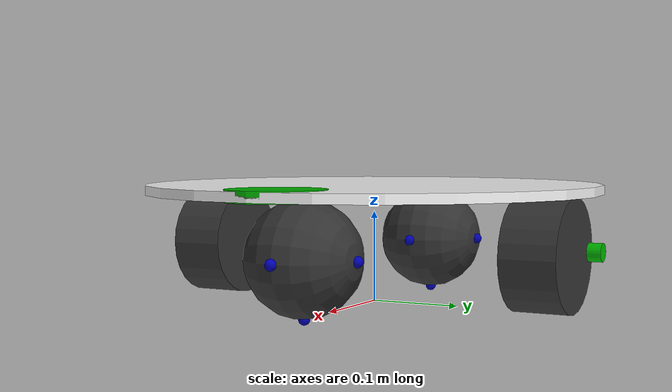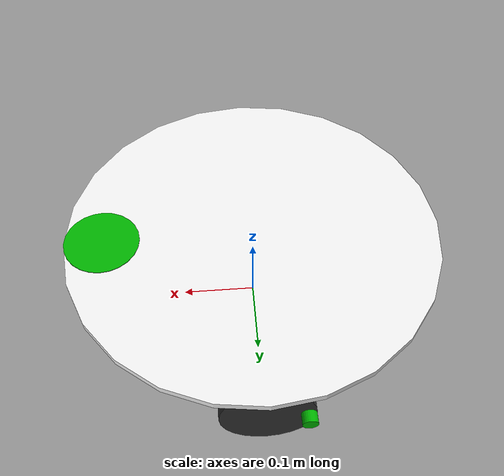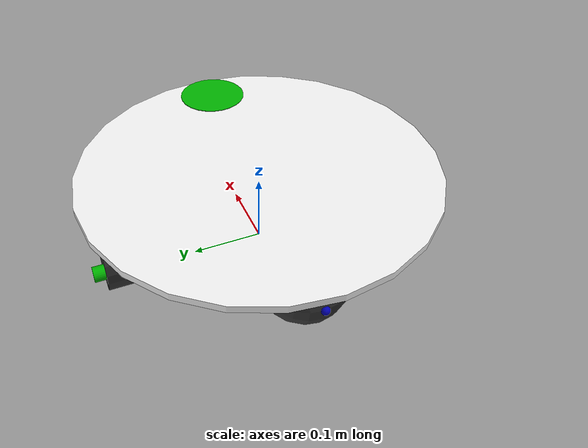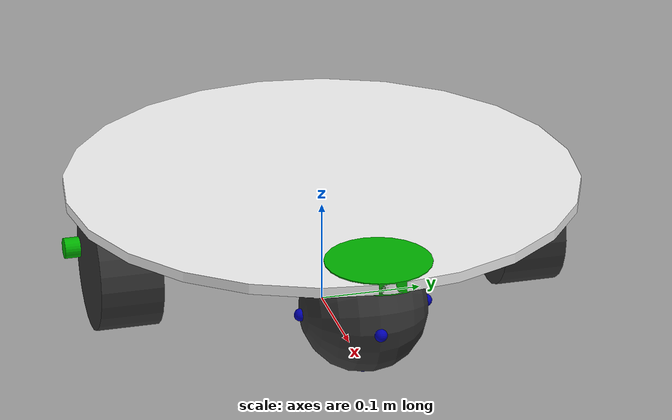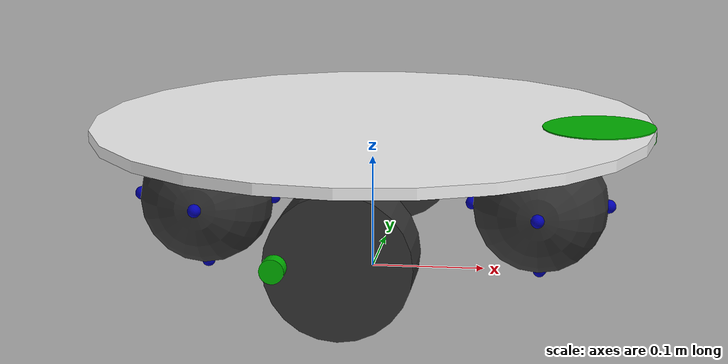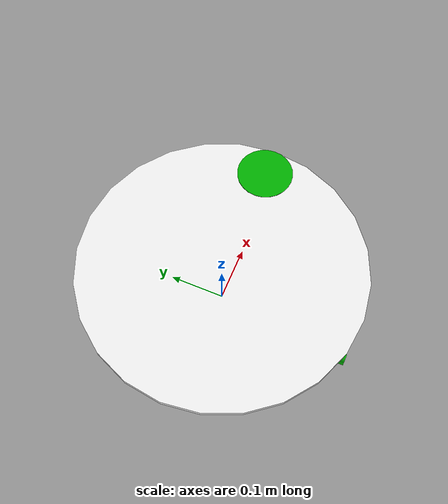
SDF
<!--Prefer Using this version.-->

<!--scale -->
<!--chassis length -->
<!--chassis radius -->
<!--wheel radius -->
<!--wheel length -->
<!--friction coefficient on wheels range from 0 to 1 -->
<!--slip coefficient range from 0 to 1 -->
<!--chassis mass-->
<!--mass of revolute wheels-->
<!--mass of caster wheels-->

<?xml version='1.0'?>
<sdf version='1.6'>
  <model name='m_4wrobot'>
	  <static>false</static>
	  <pose>0 0 0 0 0 0</pose>
	  <link name = 'chassis'>
		  <pose>0 0 0.126 0 0 0</pose>
		  <inertial>
			<mass>1</mass>
			<inertia>
				<ixx>0.015633333333333332</ixx>
				<ixy>0</ixy>
				<ixz>0</ixz>
				<iyy>0.015633333333333332</iyy>
				<iyz>0</iyz>
				<izz>0.015633333333333332</izz>
			</inertia>
		 </inertial>
		  <visual name='visual'>
			  <geometry>
				  <cylinder>
					  <radius>0.25</radius>
					  <length>0.01</length>
				  </cylinder>
			  </geometry>
			  <material>
				<ambient>0.95 0.95 0.95 01</ambient>
				<diffuse>0.95 0.95 0.95 01</diffuse>
				<specular>0 0 0 0</specular>
				<emissive>0 0 0 0</emissive>
			  </material>
		  </visual>
		  <visual name = 'visual1'>
			  <pose>0.2 0 0 0 0 0</pose>
			  <geometry>
				  <cylinder>
					  <radius>0.05</radius>
					  <length>0.0121</length>
				  </cylinder>
			  </geometry>
			  <material>
				<ambient>0 0.7 0 01</ambient>
				<diffuse>0 0.7 0 01</diffuse>
				<specular>0 0 0 0</specular>
				<emissive>0 0 0 0</emissive>
			  </material>
		  </visual>
		  <collision name='collision'>
			  <geometry>
				  <cylinder>
					  <radius>0.25</radius>
					  <length>0.0605</length><!--2*wr-->
				  </cylinder>
			  </geometry>
		  </collision>
		  <sensor name='chassis_contact' type='contact'>
			  <contact>
				  <collision>collision</collision>
			  </contact>
			  <update_rate>1</update_rate>
			  <always_on>true</always_on>
			  <visualize>false</visualize>
		  </sensor>
	  </link>
	  <link name = 'wheelL'>
		  <pose>0 0.2 0.0605 0 1.5705 1.5705</pose>
	    <inertial>
			<mass>1</mass>
			<inertia>
				<ixx>0.0012200833333333332</ixx>
				<ixy>0</ixy>
				<ixz>0</ixz>
				<iyy>0.0012200833333333332</iyy>
				<iyz>0</iyz>
				<izz>0.0012200833333333332</izz>
			</inertia>
		 </inertial>
		  <visual name = 'visual'>
			  <geometry>
				  <cylinder>
					  <radius>0.0605</radius>
					  <length>0.0605</length>
				  </cylinder>
			  </geometry>
			  <material>
				<ambient>0.2 0.2 0.2 01</ambient>
				<diffuse>0.2 0.2 0.2 01</diffuse>
				<specular>0 0 0 0</specular>
				<emissive>0 0 0 0</emissive>
			  </material>
		  </visual>
		  <visual name = 'visual1'>
			  <pose>0 0.05 0.03025 0 0 0</pose>
			  <geometry>
				  <cylinder>
					  <radius>0.010083333333333333</radius>
					  <length>0.03025</length>
				  </cylinder>
			  </geometry>
			  <material>
				<ambient>0 0.7 0 01</ambient>
				<diffuse>0 0.7 0 01</diffuse>
				<specular>0 0 0 0</specular>
				<emissive>0 0 0 0</emissive>
			  </material>
		  </visual>

		  <collision name = 'collision'>
			  <geometry>
				  <cylinder>
					  <radius>0.0605</radius>
					  <length>0.0605</length>
				  </cylinder>
			  </geometry>
		  </collision>
      </link>

      <joint type='revolute' name='L_joint'>
		  <pose>0 0 -0.03025 0 0 0</pose>
		  <child>wheelL</child>
		  <parent>chassis</parent>
		  <axis>
			  <xyz>0 0 1</xyz>
		  </axis>
		  <physics>
			  <ode>
				  <max_force>0</max_force>
			  </ode>
		  </physics>
      </joint>
      <link name = 'wheelR'>
		  <pose>0 -0.2 0.0605 0 1.5705 1.5705</pose>
		  <inertial>
		    <mass>1</mass>
			<inertia>
				<ixx>0.0012200833333333332</ixx>
				<ixy>0</ixy>
				<ixz>0</ixz>
				<iyy>0.0012200833333333332</iyy>
				<iyz>0</iyz>
				<izz>0.0012200833333333332</izz>
			</inertia>
		 </inertial>
		  <visual name = 'visual'>
			  <geometry>
				  <cylinder>
					  <radius>0.0605</radius>
					  <length>0.0605</length>
				  </cylinder>
			  </geometry>
			  <material>
				<ambient>0.2 0.2 0.2 01</ambient>
				<diffuse>0.2 0.2 0.2 01</diffuse>
				<specular>0 0 0 0</specular>
				<emissive>0 0 0 0</emissive>
			  </material>
		  </visual>
		  <visual name = 'visual1'>
			  <pose>0 0.05 -0.03025 0 0 0</pose>
			  <geometry>
				  <cylinder>
					  <radius>0.010083333333333333</radius>
					  <length>0.03025</length>
				  </cylinder>
			  </geometry>
			  <material>
				<ambient>0 0.7 0 01</ambient>
				<diffuse>0 0.7 0 01</diffuse>
				<specular>0 0 0 0</specular>
				<emissive>0 0 0 0</emissive>
			  </material>
		  </visual>
		  <collision name = 'collision'>
			  <geometry>
				  <cylinder>
					  <radius>0.0605</radius>
					  <length>0.0605</length>
				  </cylinder>
			  </geometry>
		  </collision>
      </link>
      <joint type='revolute' name='R_joint'>
		  <pose>0 0 0.03025 0 0 0</pose>
		  <child>wheelR</child>
		  <parent>chassis</parent>
		  <axis>
			  <xyz>0 0 1</xyz>
		  </axis>
		  <physics>
			  <ode>
				  <max_force>0</max_force>
			  </ode>
		  </physics>
      </joint>
      <link name = 'wheelB'>
		  <pose>-0.15 0 0.0605 0 1.5705 1.5705</pose>
		  <inertial>
			<mass>0.1</mass>
			<inertia>
				<ixx>0.00014641000000000003</ixx>
				<ixy>0</ixy>
				<ixz>0</ixz>
				<iyy>0.00014641000000000003</iyy>
				<iyz>0</iyz>
				<izz>0.00014641000000000003</izz>
			</inertia>
		 </inertial>
		 <visual name = 'visual1'>
			  <pose>0.0605 0 0 0 0 0</pose>
			  <geometry>
				  <sphere>
					  <radius>0.00605</radius>
				  </sphere>
			  </geometry>
			  <material>
				<ambient>0 0 0.7 01</ambient>
				<diffuse>0 0 0.7 01</diffuse>
				<specular>0 0 0 0</specular>
				<emissive>0 0 0 0</emissive>
			  </material>
		  </visual>
		  <visual name = 'visual2'>
			  <pose>0 0.0605 0 0 0 0</pose>
			  <geometry>
				  <sphere>
					  <radius>0.00605</radius>
				  </sphere>
			  </geometry>
			  <material>
				<ambient>0 0 0.7 01</ambient>
				<diffuse>0 0 0.7 01</diffuse>
				<specular>0 0 0 0</specular>
				<emissive>0 0 0 0</emissive>
			  </material>
		  </visual>
		  <visual name = 'visual3'>
			  <pose>0 0 0.0605 0 0 0</pose>
			  <geometry>
				  <sphere>
					  <radius>0.00605</radius>
				  </sphere>
			  </geometry>
			  <material>
				<ambient>0 0 0.7 01</ambient>
				<diffuse>0 0 0.7 01</diffuse>
				<specular>0 0 0 0</specular>
				<emissive>0 0 0 0</emissive>
			  </material>
		  </visual>
		  <visual name = 'visual4'>
			  <pose>-0.0605 0 0 0 0 0</pose>
			  <geometry>
				  <sphere>
					  <radius>-0.00605</radius>
				  </sphere>
			  </geometry>
			  <material>
				<ambient>0 0 0.7 01</ambient>
				<diffuse>0 0 0.7 01</diffuse>
				<specular>0 0 0 0</specular>
				<emissive>0 0 0 0</emissive>
			  </material>
		  </visual>
		  <visual name = 'visual5'>
			  <pose>0 -0.0605 0 0 0 0</pose>
			  <geometry>
				  <sphere>
					  <radius>0.00605</radius>
				  </sphere>
			  </geometry>
			  <material>
				<ambient>0 0 0.7 01</ambient>
				<diffuse>0 0 0.7 01</diffuse>
				<specular>0 0 0 0</specular>
				<emissive>0 0 0 0</emissive>
			  </material>
		  </visual>
		  <visual name = 'visual6'>
			  <pose>0 0 -0.0605 0 0 0</pose>
			  <geometry>
				  <sphere>
					  <radius>0.00605</radius>
				  </sphere>
			  </geometry>
			  <material>
				<ambient>0 0 0.7 01</ambient>
				<diffuse>0 0 0.7 01</diffuse>
				<specular>0 0 0 0</specular>
				<emissive>0 0 0 0</emissive>
			  </material>
		  </visual>
		  <visual name = 'visual'>
			  <geometry>
				  <sphere>
					  <radius>0.0605</radius>
				  </sphere>
			  </geometry>
			  <material>
				<ambient>0.2 0.2 0.2 01</ambient>
				<diffuse>0.2 0.2 0.2 01</diffuse>
				<specular>0 0 0 0</specular>
				<emissive>0 0 0 0</emissive>
			  </material>
		  </visual>
		  <collision name = 'collision'>
			  <geometry>
				  <sphere>
					  <radius>0.0605</radius>
				  </sphere>
			  </geometry>
		  </collision>
      </link>
      <joint type='ball' name='B_joint'>
		  <child>wheelB</child>
		  <parent>chassis</parent>
      </joint>

      <link name = 'wheelF'>
		  <pose>0.15 0 0.0605 0 1.5705 1.5705</pose>
		  <inertial>
			<mass>0.1</mass>
			<inertia>
				<ixx>0.00014641000000000003</ixx>
				<ixy>0</ixy>
				<ixz>0</ixz>
				<iyy>0.00014641000000000003</iyy>
				<iyz>0</iyz>
				<izz>0.00014641000000000003</izz>
			</inertia>
		 </inertial>
		 <visual name = 'visual1'>
			  <pose>0.0605 0 0 0 0 0</pose>
			  <geometry>
				  <sphere>
					  <radius>0.00605</radius>
				  </sphere>
			  </geometry>
			  <material>
				<ambient>0 0 0.7 01</ambient>
				<diffuse>0 0 0.7 01</diffuse>
				<specular>0 0 0 0</specular>
				<emissive>0 0 0 0</emissive>
			  </material>
		  </visual>
		  <visual name = 'visual2'>
			  <pose>0 0.0605 0 0 0 0</pose>
			  <geometry>
				  <sphere>
					  <radius>0.00605</radius>
				  </sphere>
			  </geometry>
			  <material>
				<ambient>0 0 0.7 01</ambient>
				<diffuse>0 0 0.7 01</diffuse>
				<specular>0 0 0 0</specular>
				<emissive>0 0 0 0</emissive>
			  </material>
		  </visual>
		  <visual name = 'visual3'>
			  <pose>0 0 0.0605 0 0 0</pose>
			  <geometry>
				  <sphere>
					  <radius>0.00605</radius>
				  </sphere>
			  </geometry>
			  <material>
				<ambient>0 0 0.7 01</ambient>
				<diffuse>0 0 0.7 01</diffuse>
				<specular>0 0 0 0</specular>
				<emissive>0 0 0 0</emissive>
			  </material>
		  </visual>
		  <visual name = 'visual4'>
			  <pose>-0.0605 0 0 0 0 0</pose>
			  <geometry>
				  <sphere>
					  <radius>-0.00605</radius>
				  </sphere>
			  </geometry>
			  <material>
				<ambient>0 0 0.7 01</ambient>
				<diffuse>0 0 0.7 01</diffuse>
				<specular>0 0 0 0</specular>
				<emissive>0 0 0 0</emissive>
			  </material>
		  </visual>
		  <visual name = 'visual5'>
			  <pose>0 -0.0605 0 0 0 0</pose>
			  <geometry>
				  <sphere>
					  <radius>0.00605</radius>
				  </sphere>
			  </geometry>
			  <material>
				<ambient>0 0 0.7 01</ambient>
				<diffuse>0 0 0.7 01</diffuse>
				<specular>0 0 0 0</specular>
				<emissive>0 0 0 0</emissive>
			  </material>
		  </visual>
		  <visual name = 'visual6'>
			  <pose>0 0 -0.0605 0 0 0</pose>
			  <geometry>
				  <sphere>
					  <radius>0.00605</radius>
				  </sphere>
			  </geometry>
			  <material>
				<ambient>0 0 0.7 01</ambient>
				<diffuse>0 0 0.7 01</diffuse>
				<specular>0 0 0 0</specular>
				<emissive>0 0 0 0</emissive>
			  </material>
		  </visual>
		  <visual name = 'visual'>
			  <geometry>
				  <sphere>
					  <radius>0.0605</radius>
				  </sphere>
			  </geometry>
			  <material>
				<ambient>0.2 0.2 0.2 01</ambient>
				<diffuse>0.2 0.2 0.2 01</diffuse>
				<specular>0 0 0 0</specular>
				<emissive>0 0 0 0</emissive>
			  </material>
		  </visual>
		  <collision name = 'collision'>
			  <geometry>
				  <sphere>
					  <radius>0.0605</radius>
				  </sphere>
			  </geometry>
		  </collision>
      </link>

      <joint type='ball' name='F_joint'>
		  <child>wheelF</child>
		  <parent>chassis</parent>
      </joint>

  </model>
 </sdf>
